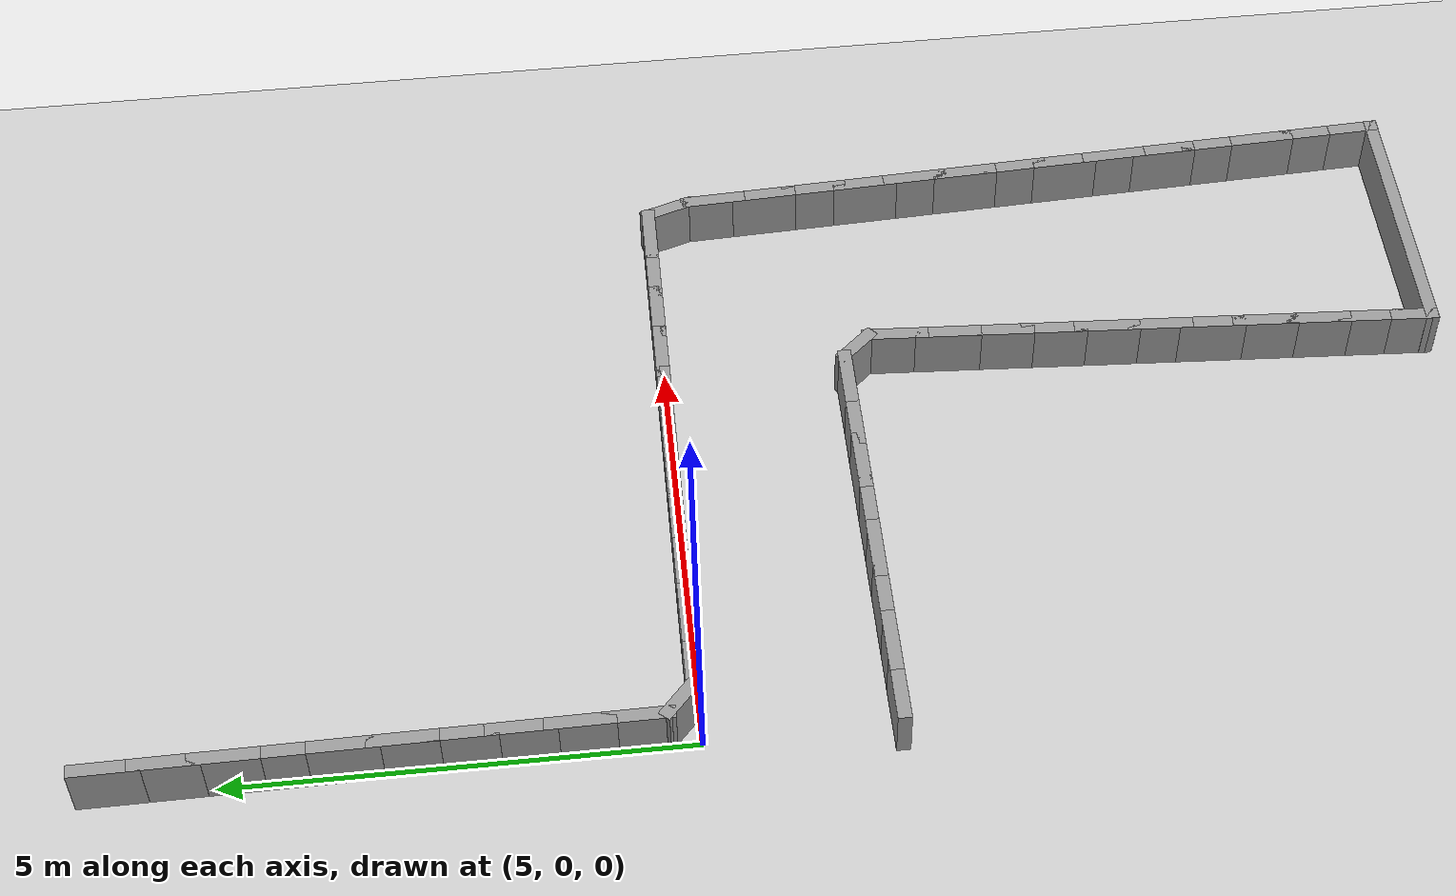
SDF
<sdf version="1.7">
 <world name="default">
  <model name="ground_plane">
   <static>1</static>
   <link name="link">
    <collision name="collision">
     <geometry><plane><normal>0 0 1</normal><size>100 100</size></plane></geometry>
     <surface><friction><ode><mu>100</mu><mu2>50</mu2></ode></friction></surface>
    </collision>
    <visual name="visual">
     <cast_shadows>0</cast_shadows>
     <geometry><plane><normal>0 0 1</normal><size>100 100</size></plane></geometry>
     <material>
      <script><uri>file://media/materials/scripts/gazebo.material</uri><name>Gazebo/Grey</name></script>
     </material>
    </visual>
   </link>
  </model>
  <model name="maze_corridor_easy">
   <link name="Wall_56">
    <collision name="Wall_56_Collision">
     <geometry><box><size>0.7500 0.1500 0.6000</size></box></geometry>
     <pose>0 0 0.3000 0 -0 0</pose>
    </collision>
    <visual name="Wall_56_Visual">
     <pose>0 0 0.3000 0 -0 0</pose>
     <geometry><box><size>0.7500 0.1500 0.6000</size></box></geometry>
     <material>
      <script><uri>file://media/materials/scripts/gazebo.material</uri><name>Gazebo/Grey</name></script>
      <ambient>1 1 1 1</ambient>
     </material>
    </visual>
    <pose>4.9990 6.0402 0 0 -0 -1.56048</pose>
   </link>
   <link name="Wall_57">
    <collision name="Wall_57_Collision">
     <geometry><box><size>0.7500 0.1500 0.6000</size></box></geometry>
     <pose>0 0 0.3000 0 -0 0</pose>
    </collision>
    <visual name="Wall_57_Visual">
     <pose>0 0 0.3000 0 -0 0</pose>
     <geometry><box><size>0.7500 0.1500 0.6000</size></box></geometry>
     <material>
      <script><uri>file://media/materials/scripts/gazebo.material</uri><name>Gazebo/Grey</name></script>
      <ambient>1 1 1 1</ambient>
     </material>
    </visual>
    <pose>5.0052 5.4402 0 0 -0 -1.56048</pose>
   </link>
   <link name="Wall_58">
    <collision name="Wall_58_Collision">
     <geometry><box><size>0.7500 0.1500 0.6000</size></box></geometry>
     <pose>0 0 0.3000 0 -0 0</pose>
    </collision>
    <visual name="Wall_58_Visual">
     <pose>0 0 0.3000 0 -0 0</pose>
     <geometry><box><size>0.7500 0.1500 0.6000</size></box></geometry>
     <material>
      <script><uri>file://media/materials/scripts/gazebo.material</uri><name>Gazebo/Grey</name></script>
      <ambient>1 1 1 1</ambient>
     </material>
    </visual>
    <pose>5.0114 4.8403 0 0 -0 -1.56048</pose>
   </link>
   <link name="Wall_59">
    <collision name="Wall_59_Collision">
     <geometry><box><size>0.7500 0.1500 0.6000</size></box></geometry>
     <pose>0 0 0.3000 0 -0 0</pose>
    </collision>
    <visual name="Wall_59_Visual">
     <pose>0 0 0.3000 0 -0 0</pose>
     <geometry><box><size>0.7500 0.1500 0.6000</size></box></geometry>
     <material>
      <script><uri>file://media/materials/scripts/gazebo.material</uri><name>Gazebo/Grey</name></script>
      <ambient>1 1 1 1</ambient>
     </material>
    </visual>
    <pose>5.0176 4.2403 0 0 -0 -1.56048</pose>
   </link>
   <link name="Wall_60">
    <collision name="Wall_60_Collision">
     <geometry><box><size>0.7500 0.1500 0.6000</size></box></geometry>
     <pose>0 0 0.3000 0 -0 0</pose>
    </collision>
    <visual name="Wall_60_Visual">
     <pose>0 0 0.3000 0 -0 0</pose>
     <geometry><box><size>0.7500 0.1500 0.6000</size></box></geometry>
     <material>
      <script><uri>file://media/materials/scripts/gazebo.material</uri><name>Gazebo/Grey</name></script>
      <ambient>1 1 1 1</ambient>
     </material>
    </visual>
    <pose>5.0237 3.6403 0 0 -0 -1.56048</pose>
   </link>
   <link name="Wall_61">
    <collision name="Wall_61_Collision">
     <geometry><box><size>0.7500 0.1500 0.6000</size></box></geometry>
     <pose>0 0 0.3000 0 -0 0</pose>
    </collision>
    <visual name="Wall_61_Visual">
     <pose>0 0 0.3000 0 -0 0</pose>
     <geometry><box><size>0.7500 0.1500 0.6000</size></box></geometry>
     <material>
      <script><uri>file://media/materials/scripts/gazebo.material</uri><name>Gazebo/Grey</name></script>
      <ambient>1 1 1 1</ambient>
     </material>
    </visual>
    <pose>5.0299 3.0404 0 0 -0 -1.56048</pose>
   </link>
   <link name="Wall_62">
    <collision name="Wall_62_Collision">
     <geometry><box><size>0.7500 0.1500 0.6000</size></box></geometry>
     <pose>0 0 0.3000 0 -0 0</pose>
    </collision>
    <visual name="Wall_62_Visual">
     <pose>0 0 0.3000 0 -0 0</pose>
     <geometry><box><size>0.7500 0.1500 0.6000</size></box></geometry>
     <material>
      <script><uri>file://media/materials/scripts/gazebo.material</uri><name>Gazebo/Grey</name></script>
      <ambient>1 1 1 1</ambient>
     </material>
    </visual>
    <pose>5.0361 2.4404 0 0 -0 -1.56048</pose>
   </link>
   <link name="Wall_63">
    <collision name="Wall_63_Collision">
     <geometry><box><size>0.7500 0.1500 0.6000</size></box></geometry>
     <pose>0 0 0.3000 0 -0 0</pose>
    </collision>
    <visual name="Wall_63_Visual">
     <pose>0 0 0.3000 0 -0 0</pose>
     <geometry><box><size>0.7500 0.1500 0.6000</size></box></geometry>
     <material>
      <script><uri>file://media/materials/scripts/gazebo.material</uri><name>Gazebo/Grey</name></script>
      <ambient>1 1 1 1</ambient>
     </material>
    </visual>
    <pose>5.0423 1.8404 0 0 -0 -1.56048</pose>
   </link>
   <link name="Wall_64">
    <collision name="Wall_64_Collision">
     <geometry><box><size>0.7500 0.1500 0.6000</size></box></geometry>
     <pose>0 0 0.3000 0 -0 0</pose>
    </collision>
    <visual name="Wall_64_Visual">
     <pose>0 0 0.3000 0 -0 0</pose>
     <geometry><box><size>0.7500 0.1500 0.6000</size></box></geometry>
     <material>
      <script><uri>file://media/materials/scripts/gazebo.material</uri><name>Gazebo/Grey</name></script>
      <ambient>1 1 1 1</ambient>
     </material>
    </visual>
    <pose>5.0485 1.2405 0 0 -0 -1.56048</pose>
   </link>
   <link name="Wall_65">
    <collision name="Wall_65_Collision">
     <geometry><box><size>0.7500 0.1500 0.6000</size></box></geometry>
     <pose>0 0 0.3000 0 -0 0</pose>
    </collision>
    <visual name="Wall_65_Visual">
     <pose>0 0 0.3000 0 -0 0</pose>
     <geometry><box><size>0.7500 0.1500 0.6000</size></box></geometry>
     <material>
      <script><uri>file://media/materials/scripts/gazebo.material</uri><name>Gazebo/Grey</name></script>
      <ambient>1 1 1 1</ambient>
     </material>
    </visual>
    <pose>5.0547 0.6405 0 0 -0 -1.56048</pose>
   </link>
   <link name="Wall_66">
    <collision name="Wall_66_Collision">
     <geometry><box><size>0.5789 0.1500 0.6000</size></box></geometry>
     <pose>0 0 0.3000 0 -0 0</pose>
    </collision>
    <visual name="Wall_66_Visual">
     <pose>0 0 0.3000 0 -0 0</pose>
     <geometry><box><size>0.5789 0.1500 0.6000</size></box></geometry>
     <material>
      <script><uri>file://media/materials/scripts/gazebo.material</uri><name>Gazebo/Grey</name></script>
      <ambient>1 1 1 1</ambient>
     </material>
    </visual>
    <pose>5.2193 0.1994 0 0 -0 -0.71803</pose>
   </link>
   <link name="Wall_67">
    <collision name="Wall_67_Collision">
     <geometry><box><size>0.7500 0.1500 0.6000</size></box></geometry>
     <pose>0 0 0.3000 0 -0 0</pose>
    </collision>
    <visual name="Wall_67_Visual">
     <pose>0 0 0.3000 0 -0 0</pose>
     <geometry><box><size>0.7500 0.1500 0.6000</size></box></geometry>
     <material>
      <script><uri>file://media/materials/scripts/gazebo.material</uri><name>Gazebo/Grey</name></script>
      <ambient>1 1 1 1</ambient>
     </material>
    </visual>
    <pose>5.6808 0.0561 0 0 -0 -0.00733</pose>
   </link>
   <link name="Wall_68">
    <collision name="Wall_68_Collision">
     <geometry><box><size>0.7500 0.1500 0.6000</size></box></geometry>
     <pose>0 0 0.3000 0 -0 0</pose>
    </collision>
    <visual name="Wall_68_Visual">
     <pose>0 0 0.3000 0 -0 0</pose>
     <geometry><box><size>0.7500 0.1500 0.6000</size></box></geometry>
     <material>
      <script><uri>file://media/materials/scripts/gazebo.material</uri><name>Gazebo/Grey</name></script>
      <ambient>1 1 1 1</ambient>
     </material>
    </visual>
    <pose>6.2808 0.0517 0 0 -0 -0.00733</pose>
   </link>
   <link name="Wall_69">
    <collision name="Wall_69_Collision">
     <geometry><box><size>0.7500 0.1500 0.6000</size></box></geometry>
     <pose>0 0 0.3000 0 -0 0</pose>
    </collision>
    <visual name="Wall_69_Visual">
     <pose>0 0 0.3000 0 -0 0</pose>
     <geometry><box><size>0.7500 0.1500 0.6000</size></box></geometry>
     <material>
      <script><uri>file://media/materials/scripts/gazebo.material</uri><name>Gazebo/Grey</name></script>
      <ambient>1 1 1 1</ambient>
     </material>
    </visual>
    <pose>6.8808 0.0473 0 0 -0 -0.00733</pose>
   </link>
   <link name="Wall_70">
    <collision name="Wall_70_Collision">
     <geometry><box><size>0.7500 0.1500 0.6000</size></box></geometry>
     <pose>0 0 0.3000 0 -0 0</pose>
    </collision>
    <visual name="Wall_70_Visual">
     <pose>0 0 0.3000 0 -0 0</pose>
     <geometry><box><size>0.7500 0.1500 0.6000</size></box></geometry>
     <material>
      <script><uri>file://media/materials/scripts/gazebo.material</uri><name>Gazebo/Grey</name></script>
      <ambient>1 1 1 1</ambient>
     </material>
    </visual>
    <pose>7.4807 0.0429 0 0 -0 -0.00733</pose>
   </link>
   <link name="Wall_71">
    <collision name="Wall_71_Collision">
     <geometry><box><size>0.7500 0.1500 0.6000</size></box></geometry>
     <pose>0 0 0.3000 0 -0 0</pose>
    </collision>
    <visual name="Wall_71_Visual">
     <pose>0 0 0.3000 0 -0 0</pose>
     <geometry><box><size>0.7500 0.1500 0.6000</size></box></geometry>
     <material>
      <script><uri>file://media/materials/scripts/gazebo.material</uri><name>Gazebo/Grey</name></script>
      <ambient>1 1 1 1</ambient>
     </material>
    </visual>
    <pose>8.0807 0.0385 0 0 -0 -0.00733</pose>
   </link>
   <link name="Wall_72">
    <collision name="Wall_72_Collision">
     <geometry><box><size>0.7500 0.1500 0.6000</size></box></geometry>
     <pose>0 0 0.3000 0 -0 0</pose>
    </collision>
    <visual name="Wall_72_Visual">
     <pose>0 0 0.3000 0 -0 0</pose>
     <geometry><box><size>0.7500 0.1500 0.6000</size></box></geometry>
     <material>
      <script><uri>file://media/materials/scripts/gazebo.material</uri><name>Gazebo/Grey</name></script>
      <ambient>1 1 1 1</ambient>
     </material>
    </visual>
    <pose>8.6807 0.0341 0 0 -0 -0.00733</pose>
   </link>
   <link name="Wall_73">
    <collision name="Wall_73_Collision">
     <geometry><box><size>0.7500 0.1500 0.6000</size></box></geometry>
     <pose>0 0 0.3000 0 -0 0</pose>
    </collision>
    <visual name="Wall_73_Visual">
     <pose>0 0 0.3000 0 -0 0</pose>
     <geometry><box><size>0.7500 0.1500 0.6000</size></box></geometry>
     <material>
      <script><uri>file://media/materials/scripts/gazebo.material</uri><name>Gazebo/Grey</name></script>
      <ambient>1 1 1 1</ambient>
     </material>
    </visual>
    <pose>9.2807 0.0297 0 0 -0 -0.00733</pose>
   </link>
   <link name="Wall_74">
    <collision name="Wall_74_Collision">
     <geometry><box><size>0.7500 0.1500 0.6000</size></box></geometry>
     <pose>0 0 0.3000 0 -0 0</pose>
    </collision>
    <visual name="Wall_74_Visual">
     <pose>0 0 0.3000 0 -0 0</pose>
     <geometry><box><size>0.7500 0.1500 0.6000</size></box></geometry>
     <material>
      <script><uri>file://media/materials/scripts/gazebo.material</uri><name>Gazebo/Grey</name></script>
      <ambient>1 1 1 1</ambient>
     </material>
    </visual>
    <pose>9.8807 0.0253 0 0 -0 -0.00733</pose>
   </link>
   <link name="Wall_75">
    <collision name="Wall_75_Collision">
     <geometry><box><size>0.7500 0.1500 0.6000</size></box></geometry>
     <pose>0 0 0.3000 0 -0 0</pose>
    </collision>
    <visual name="Wall_75_Visual">
     <pose>0 0 0.3000 0 -0 0</pose>
     <geometry><box><size>0.7500 0.1500 0.6000</size></box></geometry>
     <material>
      <script><uri>file://media/materials/scripts/gazebo.material</uri><name>Gazebo/Grey</name></script>
      <ambient>1 1 1 1</ambient>
     </material>
    </visual>
    <pose>10.4807 0.0209 0 0 -0 -0.00733</pose>
   </link>
   <link name="Wall_76">
    <collision name="Wall_76_Collision">
     <geometry><box><size>0.7500 0.1500 0.6000</size></box></geometry>
     <pose>0 0 0.3000 0 -0 0</pose>
    </collision>
    <visual name="Wall_76_Visual">
     <pose>0 0 0.3000 0 -0 0</pose>
     <geometry><box><size>0.7500 0.1500 0.6000</size></box></geometry>
     <material>
      <script><uri>file://media/materials/scripts/gazebo.material</uri><name>Gazebo/Grey</name></script>
      <ambient>1 1 1 1</ambient>
     </material>
    </visual>
    <pose>11.0806 0.0166 0 0 -0 -0.00733</pose>
   </link>
   <link name="Wall_77">
    <collision name="Wall_77_Collision">
     <geometry><box><size>0.7500 0.1500 0.6000</size></box></geometry>
     <pose>0 0 0.3000 0 -0 0</pose>
    </collision>
    <visual name="Wall_77_Visual">
     <pose>0 0 0.3000 0 -0 0</pose>
     <geometry><box><size>0.7500 0.1500 0.6000</size></box></geometry>
     <material>
      <script><uri>file://media/materials/scripts/gazebo.material</uri><name>Gazebo/Grey</name></script>
      <ambient>1 1 1 1</ambient>
     </material>
    </visual>
    <pose>11.6806 0.0122 0 0 -0 -0.00733</pose>
   </link>
   <link name="Wall_78">
    <collision name="Wall_78_Collision">
     <geometry><box><size>0.6446 0.1500 0.6000</size></box></geometry>
     <pose>0 0 0.3000 0 -0 0</pose>
    </collision>
    <visual name="Wall_78_Visual">
     <pose>0 0 0.3000 0 -0 0</pose>
     <geometry><box><size>0.6446 0.1500 0.6000</size></box></geometry>
     <material>
      <script><uri>file://media/materials/scripts/gazebo.material</uri><name>Gazebo/Grey</name></script>
      <ambient>1 1 1 1</ambient>
     </material>
    </visual>
    <pose>12.0558 -0.2256 0 0 -0 -1.26191</pose>
   </link>
   <link name="Wall_79">
    <collision name="Wall_79_Collision">
     <geometry><box><size>0.7500 0.1500 0.6000</size></box></geometry>
     <pose>0 0 0.3000 0 -0 0</pose>
    </collision>
    <visual name="Wall_79_Visual">
     <pose>0 0 0.3000 0 -0 0</pose>
     <geometry><box><size>0.7500 0.1500 0.6000</size></box></geometry>
     <material>
      <script><uri>file://media/materials/scripts/gazebo.material</uri><name>Gazebo/Grey</name></script>
      <ambient>1 1 1 1</ambient>
     </material>
    </visual>
    <pose>12.1444 -0.7609 0 0 -0 -1.52603</pose>
   </link>
   <link name="Wall_80">
    <collision name="Wall_80_Collision">
     <geometry><box><size>0.7500 0.1500 0.6000</size></box></geometry>
     <pose>0 0 0.3000 0 -0 0</pose>
    </collision>
    <visual name="Wall_80_Visual">
     <pose>0 0 0.3000 0 -0 0</pose>
     <geometry><box><size>0.7500 0.1500 0.6000</size></box></geometry>
     <material>
      <script><uri>file://media/materials/scripts/gazebo.material</uri><name>Gazebo/Grey</name></script>
      <ambient>1 1 1 1</ambient>
     </material>
    </visual>
    <pose>12.1712 -1.3603 0 0 -0 -1.52603</pose>
   </link>
   <link name="Wall_81">
    <collision name="Wall_81_Collision">
     <geometry><box><size>0.7500 0.1500 0.6000</size></box></geometry>
     <pose>0 0 0.3000 0 -0 0</pose>
    </collision>
    <visual name="Wall_81_Visual">
     <pose>0 0 0.3000 0 -0 0</pose>
     <geometry><box><size>0.7500 0.1500 0.6000</size></box></geometry>
     <material>
      <script><uri>file://media/materials/scripts/gazebo.material</uri><name>Gazebo/Grey</name></script>
      <ambient>1 1 1 1</ambient>
     </material>
    </visual>
    <pose>12.1981 -1.9597 0 0 -0 -1.52603</pose>
   </link>
   <link name="Wall_82">
    <collision name="Wall_82_Collision">
     <geometry><box><size>0.7500 0.1500 0.6000</size></box></geometry>
     <pose>0 0 0.3000 0 -0 0</pose>
    </collision>
    <visual name="Wall_82_Visual">
     <pose>0 0 0.3000 0 -0 0</pose>
     <geometry><box><size>0.7500 0.1500 0.6000</size></box></geometry>
     <material>
      <script><uri>file://media/materials/scripts/gazebo.material</uri><name>Gazebo/Grey</name></script>
      <ambient>1 1 1 1</ambient>
     </material>
    </visual>
    <pose>12.2249 -2.5591 0 0 -0 -1.52603</pose>
   </link>
   <link name="Wall_83">
    <collision name="Wall_83_Collision">
     <geometry><box><size>0.7500 0.1500 0.6000</size></box></geometry>
     <pose>0 0 0.3000 0 -0 0</pose>
    </collision>
    <visual name="Wall_83_Visual">
     <pose>0 0 0.3000 0 -0 0</pose>
     <geometry><box><size>0.7500 0.1500 0.6000</size></box></geometry>
     <material>
      <script><uri>file://media/materials/scripts/gazebo.material</uri><name>Gazebo/Grey</name></script>
      <ambient>1 1 1 1</ambient>
     </material>
    </visual>
    <pose>12.2518 -3.1585 0 0 -0 -1.52603</pose>
   </link>
   <link name="Wall_84">
    <collision name="Wall_84_Collision">
     <geometry><box><size>0.7500 0.1500 0.6000</size></box></geometry>
     <pose>0 0 0.3000 0 -0 0</pose>
    </collision>
    <visual name="Wall_84_Visual">
     <pose>0 0 0.3000 0 -0 0</pose>
     <geometry><box><size>0.7500 0.1500 0.6000</size></box></geometry>
     <material>
      <script><uri>file://media/materials/scripts/gazebo.material</uri><name>Gazebo/Grey</name></script>
      <ambient>1 1 1 1</ambient>
     </material>
    </visual>
    <pose>12.2786 -3.7579 0 0 -0 -1.52603</pose>
   </link>
   <link name="Wall_85">
    <collision name="Wall_85_Collision">
     <geometry><box><size>0.7500 0.1500 0.6000</size></box></geometry>
     <pose>0 0 0.3000 0 -0 0</pose>
    </collision>
    <visual name="Wall_85_Visual">
     <pose>0 0 0.3000 0 -0 0</pose>
     <geometry><box><size>0.7500 0.1500 0.6000</size></box></geometry>
     <material>
      <script><uri>file://media/materials/scripts/gazebo.material</uri><name>Gazebo/Grey</name></script>
      <ambient>1 1 1 1</ambient>
     </material>
    </visual>
    <pose>12.3055 -4.3573 0 0 -0 -1.52603</pose>
   </link>
   <link name="Wall_86">
    <collision name="Wall_86_Collision">
     <geometry><box><size>0.7500 0.1500 0.6000</size></box></geometry>
     <pose>0 0 0.3000 0 -0 0</pose>
    </collision>
    <visual name="Wall_86_Visual">
     <pose>0 0 0.3000 0 -0 0</pose>
     <geometry><box><size>0.7500 0.1500 0.6000</size></box></geometry>
     <material>
      <script><uri>file://media/materials/scripts/gazebo.material</uri><name>Gazebo/Grey</name></script>
      <ambient>1 1 1 1</ambient>
     </material>
    </visual>
    <pose>12.3323 -4.9567 0 0 -0 -1.52603</pose>
   </link>
   <link name="Wall_87">
    <collision name="Wall_87_Collision">
     <geometry><box><size>0.7500 0.1500 0.6000</size></box></geometry>
     <pose>0 0 0.3000 0 -0 0</pose>
    </collision>
    <visual name="Wall_87_Visual">
     <pose>0 0 0.3000 0 -0 0</pose>
     <geometry><box><size>0.7500 0.1500 0.6000</size></box></geometry>
     <material>
      <script><uri>file://media/materials/scripts/gazebo.material</uri><name>Gazebo/Grey</name></script>
      <ambient>1 1 1 1</ambient>
     </material>
    </visual>
    <pose>12.3592 -5.5561 0 0 -0 -1.52603</pose>
   </link>
   <link name="Wall_88">
    <collision name="Wall_88_Collision">
     <geometry><box><size>0.7500 0.1500 0.6000</size></box></geometry>
     <pose>0 0 0.3000 0 -0 0</pose>
    </collision>
    <visual name="Wall_88_Visual">
     <pose>0 0 0.3000 0 -0 0</pose>
     <geometry><box><size>0.7500 0.1500 0.6000</size></box></geometry>
     <material>
      <script><uri>file://media/materials/scripts/gazebo.material</uri><name>Gazebo/Grey</name></script>
      <ambient>1 1 1 1</ambient>
     </material>
    </visual>
    <pose>12.3860 -6.1555 0 0 -0 -1.52603</pose>
   </link>
   <link name="Wall_89">
    <collision name="Wall_89_Collision">
     <geometry><box><size>0.7500 0.1500 0.6000</size></box></geometry>
     <pose>0 0 0.3000 0 -0 0</pose>
    </collision>
    <visual name="Wall_89_Visual">
     <pose>0 0 0.3000 0 -0 0</pose>
     <geometry><box><size>0.7500 0.1500 0.6000</size></box></geometry>
     <material>
      <script><uri>file://media/materials/scripts/gazebo.material</uri><name>Gazebo/Grey</name></script>
      <ambient>1 1 1 1</ambient>
     </material>
    </visual>
    <pose>12.4129 -6.7549 0 0 -0 -1.52603</pose>
   </link>
   <link name="Wall_90">
    <collision name="Wall_90_Collision">
     <geometry><box><size>0.7500 0.1500 0.6000</size></box></geometry>
     <pose>0 0 0.3000 0 -0 0</pose>
    </collision>
    <visual name="Wall_90_Visual">
     <pose>0 0 0.3000 0 -0 0</pose>
     <geometry><box><size>0.7500 0.1500 0.6000</size></box></geometry>
     <material>
      <script><uri>file://media/materials/scripts/gazebo.material</uri><name>Gazebo/Grey</name></script>
      <ambient>1 1 1 1</ambient>
     </material>
    </visual>
    <pose>12.4397 -7.3543 0 0 -0 -1.52603</pose>
   </link>
   <link name="Wall_91">
    <collision name="Wall_91_Collision">
     <geometry><box><size>0.7500 0.1500 0.6000</size></box></geometry>
     <pose>0 0 0.3000 0 -0 0</pose>
    </collision>
    <visual name="Wall_91_Visual">
     <pose>0 0 0.3000 0 -0 0</pose>
     <geometry><box><size>0.7500 0.1500 0.6000</size></box></geometry>
     <material>
      <script><uri>file://media/materials/scripts/gazebo.material</uri><name>Gazebo/Grey</name></script>
      <ambient>1 1 1 1</ambient>
     </material>
    </visual>
    <pose>12.4666 -7.9537 0 0 -0 -1.52603</pose>
   </link>
   <link name="Wall_92">
    <collision name="Wall_92_Collision">
     <geometry><box><size>0.5970 0.1500 0.6000</size></box></geometry>
     <pose>0 0 0.3000 0 -0 0</pose>
    </collision>
    <visual name="Wall_92_Visual">
     <pose>0 0 0.3000 0 -0 0</pose>
     <geometry><box><size>0.5970 0.1500 0.6000</size></box></geometry>
     <material>
      <script><uri>file://media/materials/scripts/gazebo.material</uri><name>Gazebo/Grey</name></script>
      <ambient>1 1 1 1</ambient>
     </material>
    </visual>
    <pose>12.4900 -8.4767 0 0 -0 -1.52603</pose>
   </link>
   <link name="Wall_152">
    <collision name="Wall_152_Collision">
     <geometry><box><size>0.7500 0.1500 0.6000</size></box></geometry>
     <pose>0 0 0.3000 0 -0 0</pose>
    </collision>
    <visual name="Wall_152_Visual">
     <pose>0 0 0.3000 0 -0 0</pose>
     <geometry><box><size>0.7500 0.1500 0.6000</size></box></geometry>
     <material>
      <script><uri>file://media/materials/scripts/gazebo.material</uri><name>Gazebo/Grey</name></script>
      <ambient>1 1 1 1</ambient>
     </material>
    </visual>
    <pose>5.0971 -2.0446 0 0 -0 0.00743</pose>
   </link>
   <link name="Wall_153">
    <collision name="Wall_153_Collision">
     <geometry><box><size>0.7500 0.1500 0.6000</size></box></geometry>
     <pose>0 0 0.3000 0 -0 0</pose>
    </collision>
    <visual name="Wall_153_Visual">
     <pose>0 0 0.3000 0 -0 0</pose>
     <geometry><box><size>0.7500 0.1500 0.6000</size></box></geometry>
     <material>
      <script><uri>file://media/materials/scripts/gazebo.material</uri><name>Gazebo/Grey</name></script>
      <ambient>1 1 1 1</ambient>
     </material>
    </visual>
    <pose>5.6971 -2.0402 0 0 -0 0.00743</pose>
   </link>
   <link name="Wall_154">
    <collision name="Wall_154_Collision">
     <geometry><box><size>0.7500 0.1500 0.6000</size></box></geometry>
     <pose>0 0 0.3000 0 -0 0</pose>
    </collision>
    <visual name="Wall_154_Visual">
     <pose>0 0 0.3000 0 -0 0</pose>
     <geometry><box><size>0.7500 0.1500 0.6000</size></box></geometry>
     <material>
      <script><uri>file://media/materials/scripts/gazebo.material</uri><name>Gazebo/Grey</name></script>
      <ambient>1 1 1 1</ambient>
     </material>
    </visual>
    <pose>6.2971 -2.0357 0 0 -0 0.00743</pose>
   </link>
   <link name="Wall_155">
    <collision name="Wall_155_Collision">
     <geometry><box><size>0.7500 0.1500 0.6000</size></box></geometry>
     <pose>0 0 0.3000 0 -0 0</pose>
    </collision>
    <visual name="Wall_155_Visual">
     <pose>0 0 0.3000 0 -0 0</pose>
     <geometry><box><size>0.7500 0.1500 0.6000</size></box></geometry>
     <material>
      <script><uri>file://media/materials/scripts/gazebo.material</uri><name>Gazebo/Grey</name></script>
      <ambient>1 1 1 1</ambient>
     </material>
    </visual>
    <pose>6.8971 -2.0313 0 0 -0 0.00743</pose>
   </link>
   <link name="Wall_156">
    <collision name="Wall_156_Collision">
     <geometry><box><size>0.7500 0.1500 0.6000</size></box></geometry>
     <pose>0 0 0.3000 0 -0 0</pose>
    </collision>
    <visual name="Wall_156_Visual">
     <pose>0 0 0.3000 0 -0 0</pose>
     <geometry><box><size>0.7500 0.1500 0.6000</size></box></geometry>
     <material>
      <script><uri>file://media/materials/scripts/gazebo.material</uri><name>Gazebo/Grey</name></script>
      <ambient>1 1 1 1</ambient>
     </material>
    </visual>
    <pose>7.4971 -2.0268 0 0 -0 0.00743</pose>
   </link>
   <link name="Wall_157">
    <collision name="Wall_157_Collision">
     <geometry><box><size>0.7500 0.1500 0.6000</size></box></geometry>
     <pose>0 0 0.3000 0 -0 0</pose>
    </collision>
    <visual name="Wall_157_Visual">
     <pose>0 0 0.3000 0 -0 0</pose>
     <geometry><box><size>0.7500 0.1500 0.6000</size></box></geometry>
     <material>
      <script><uri>file://media/materials/scripts/gazebo.material</uri><name>Gazebo/Grey</name></script>
      <ambient>1 1 1 1</ambient>
     </material>
    </visual>
    <pose>8.0971 -2.0223 0 0 -0 0.00743</pose>
   </link>
   <link name="Wall_158">
    <collision name="Wall_158_Collision">
     <geometry><box><size>0.7500 0.1500 0.6000</size></box></geometry>
     <pose>0 0 0.3000 0 -0 0</pose>
    </collision>
    <visual name="Wall_158_Visual">
     <pose>0 0 0.3000 0 -0 0</pose>
     <geometry><box><size>0.7500 0.1500 0.6000</size></box></geometry>
     <material>
      <script><uri>file://media/materials/scripts/gazebo.material</uri><name>Gazebo/Grey</name></script>
      <ambient>1 1 1 1</ambient>
     </material>
    </visual>
    <pose>8.6970 -2.0179 0 0 -0 0.00743</pose>
   </link>
   <link name="Wall_159">
    <collision name="Wall_159_Collision">
     <geometry><box><size>0.7500 0.1500 0.6000</size></box></geometry>
     <pose>0 0 0.3000 0 -0 0</pose>
    </collision>
    <visual name="Wall_159_Visual">
     <pose>0 0 0.3000 0 -0 0</pose>
     <geometry><box><size>0.7500 0.1500 0.6000</size></box></geometry>
     <material>
      <script><uri>file://media/materials/scripts/gazebo.material</uri><name>Gazebo/Grey</name></script>
      <ambient>1 1 1 1</ambient>
     </material>
    </visual>
    <pose>9.2970 -2.0134 0 0 -0 0.00743</pose>
   </link>
   <link name="Wall_160">
    <collision name="Wall_160_Collision">
     <geometry><box><size>0.5602 0.1500 0.6000</size></box></geometry>
     <pose>0 0 0.3000 0 -0 0</pose>
    </collision>
    <visual name="Wall_160_Visual">
     <pose>0 0 0.3000 0 -0 0</pose>
     <geometry><box><size>0.5602 0.1500 0.6000</size></box></geometry>
     <material>
      <script><uri>file://media/materials/scripts/gazebo.material</uri><name>Gazebo/Grey</name></script>
      <ambient>1 1 1 1</ambient>
     </material>
    </visual>
    <pose>9.7346 -2.1633 0 0 -0 -0.83543</pose>
   </link>
   <link name="Wall_161">
    <collision name="Wall_161_Collision">
     <geometry><box><size>0.7500 0.1500 0.6000</size></box></geometry>
     <pose>0 0 0.3000 0 -0 0</pose>
    </collision>
    <visual name="Wall_161_Visual">
     <pose>0 0 0.3000 0 -0 0</pose>
     <geometry><box><size>0.7500 0.1500 0.6000</size></box></geometry>
     <material>
      <script><uri>file://media/materials/scripts/gazebo.material</uri><name>Gazebo/Grey</name></script>
      <ambient>1 1 1 1</ambient>
     </material>
    </visual>
    <pose>9.8548 -2.6149 0 0 -0 -1.62903</pose>
   </link>
   <link name="Wall_162">
    <collision name="Wall_162_Collision">
     <geometry><box><size>0.7500 0.1500 0.6000</size></box></geometry>
     <pose>0 0 0.3000 0 -0 0</pose>
    </collision>
    <visual name="Wall_162_Visual">
     <pose>0 0 0.3000 0 -0 0</pose>
     <geometry><box><size>0.7500 0.1500 0.6000</size></box></geometry>
     <material>
      <script><uri>file://media/materials/scripts/gazebo.material</uri><name>Gazebo/Grey</name></script>
      <ambient>1 1 1 1</ambient>
     </material>
    </visual>
    <pose>9.8198 -3.2139 0 0 -0 -1.62903</pose>
   </link>
   <link name="Wall_163">
    <collision name="Wall_163_Collision">
     <geometry><box><size>0.7500 0.1500 0.6000</size></box></geometry>
     <pose>0 0 0.3000 0 -0 0</pose>
    </collision>
    <visual name="Wall_163_Visual">
     <pose>0 0 0.3000 0 -0 0</pose>
     <geometry><box><size>0.7500 0.1500 0.6000</size></box></geometry>
     <material>
      <script><uri>file://media/materials/scripts/gazebo.material</uri><name>Gazebo/Grey</name></script>
      <ambient>1 1 1 1</ambient>
     </material>
    </visual>
    <pose>9.7849 -3.8129 0 0 -0 -1.62903</pose>
   </link>
   <link name="Wall_164">
    <collision name="Wall_164_Collision">
     <geometry><box><size>0.7500 0.1500 0.6000</size></box></geometry>
     <pose>0 0 0.3000 0 -0 0</pose>
    </collision>
    <visual name="Wall_164_Visual">
     <pose>0 0 0.3000 0 -0 0</pose>
     <geometry><box><size>0.7500 0.1500 0.6000</size></box></geometry>
     <material>
      <script><uri>file://media/materials/scripts/gazebo.material</uri><name>Gazebo/Grey</name></script>
      <ambient>1 1 1 1</ambient>
     </material>
    </visual>
    <pose>9.7500 -4.4118 0 0 -0 -1.62903</pose>
   </link>
   <link name="Wall_165">
    <collision name="Wall_165_Collision">
     <geometry><box><size>0.7500 0.1500 0.6000</size></box></geometry>
     <pose>0 0 0.3000 0 -0 0</pose>
    </collision>
    <visual name="Wall_165_Visual">
     <pose>0 0 0.3000 0 -0 0</pose>
     <geometry><box><size>0.7500 0.1500 0.6000</size></box></geometry>
     <material>
      <script><uri>file://media/materials/scripts/gazebo.material</uri><name>Gazebo/Grey</name></script>
      <ambient>1 1 1 1</ambient>
     </material>
    </visual>
    <pose>9.7151 -5.0108 0 0 -0 -1.62903</pose>
   </link>
   <link name="Wall_166">
    <collision name="Wall_166_Collision">
     <geometry><box><size>0.7500 0.1500 0.6000</size></box></geometry>
     <pose>0 0 0.3000 0 -0 0</pose>
    </collision>
    <visual name="Wall_166_Visual">
     <pose>0 0 0.3000 0 -0 0</pose>
     <geometry><box><size>0.7500 0.1500 0.6000</size></box></geometry>
     <material>
      <script><uri>file://media/materials/scripts/gazebo.material</uri><name>Gazebo/Grey</name></script>
      <ambient>1 1 1 1</ambient>
     </material>
    </visual>
    <pose>9.6802 -5.6098 0 0 -0 -1.62903</pose>
   </link>
   <link name="Wall_167">
    <collision name="Wall_167_Collision">
     <geometry><box><size>0.7500 0.1500 0.6000</size></box></geometry>
     <pose>0 0 0.3000 0 -0 0</pose>
    </collision>
    <visual name="Wall_167_Visual">
     <pose>0 0 0.3000 0 -0 0</pose>
     <geometry><box><size>0.7500 0.1500 0.6000</size></box></geometry>
     <material>
      <script><uri>file://media/materials/scripts/gazebo.material</uri><name>Gazebo/Grey</name></script>
      <ambient>1 1 1 1</ambient>
     </material>
    </visual>
    <pose>9.6452 -6.2088 0 0 -0 -1.62903</pose>
   </link>
   <link name="Wall_168">
    <collision name="Wall_168_Collision">
     <geometry><box><size>0.7500 0.1500 0.6000</size></box></geometry>
     <pose>0 0 0.3000 0 -0 0</pose>
    </collision>
    <visual name="Wall_168_Visual">
     <pose>0 0 0.3000 0 -0 0</pose>
     <geometry><box><size>0.7500 0.1500 0.6000</size></box></geometry>
     <material>
      <script><uri>file://media/materials/scripts/gazebo.material</uri><name>Gazebo/Grey</name></script>
      <ambient>1 1 1 1</ambient>
     </material>
    </visual>
    <pose>9.6103 -6.8078 0 0 -0 -1.62903</pose>
   </link>
   <link name="Wall_169">
    <collision name="Wall_169_Collision">
     <geometry><box><size>0.7500 0.1500 0.6000</size></box></geometry>
     <pose>0 0 0.3000 0 -0 0</pose>
    </collision>
    <visual name="Wall_169_Visual">
     <pose>0 0 0.3000 0 -0 0</pose>
     <geometry><box><size>0.7500 0.1500 0.6000</size></box></geometry>
     <material>
      <script><uri>file://media/materials/scripts/gazebo.material</uri><name>Gazebo/Grey</name></script>
      <ambient>1 1 1 1</ambient>
     </material>
    </visual>
    <pose>9.5754 -7.4068 0 0 -0 -1.62903</pose>
   </link>
   <link name="Wall_170">
    <collision name="Wall_170_Collision">
     <geometry><box><size>0.7500 0.1500 0.6000</size></box></geometry>
     <pose>0 0 0.3000 0 -0 0</pose>
    </collision>
    <visual name="Wall_170_Visual">
     <pose>0 0 0.3000 0 -0 0</pose>
     <geometry><box><size>0.7500 0.1500 0.6000</size></box></geometry>
     <material>
      <script><uri>file://media/materials/scripts/gazebo.material</uri><name>Gazebo/Grey</name></script>
      <ambient>1 1 1 1</ambient>
     </material>
    </visual>
    <pose>9.5405 -8.0057 0 0 -0 -1.62903</pose>
   </link>
   <link name="Wall_171">
    <collision name="Wall_171_Collision">
     <geometry><box><size>0.5454 0.1500 0.6000</size></box></geometry>
     <pose>0 0 0.3000 0 -0 0</pose>
    </collision>
    <visual name="Wall_171_Visual">
     <pose>0 0 0.3000 0 -0 0</pose>
     <geometry><box><size>0.5454 0.1500 0.6000</size></box></geometry>
     <material>
      <script><uri>file://media/materials/scripts/gazebo.material</uri><name>Gazebo/Grey</name></script>
      <ambient>1 1 1 1</ambient>
     </material>
    </visual>
    <pose>9.5115 -8.5026 0 0 -0 -1.62903</pose>
   </link>
   <link name="Wall_173">
    <collision name="Wall_173_Collision">
     <geometry><box><size>3.1500 0.1500 0.6000</size></box></geometry>
     <pose>0 0 0.3000 0 -0 0</pose>
    </collision>
    <visual name="Wall_173_Visual">
     <pose>0 0 0.3000 0 -0 0</pose>
     <geometry><box><size>3.1500 0.1500 0.6000</size></box></geometry>
     <material>
      <script><uri>file://media/materials/scripts/gazebo.material</uri><name>Gazebo/Grey</name></script>
      <ambient>1 1 1 1</ambient>
     </material>
    </visual>
    <pose>11.0000 -8.7000 0 0 -0 3.14159</pose>
   </link>
   <static>1</static>
  </model>
 </world>
</sdf>
